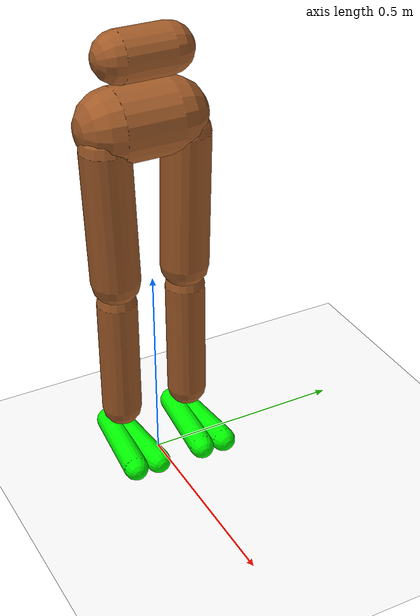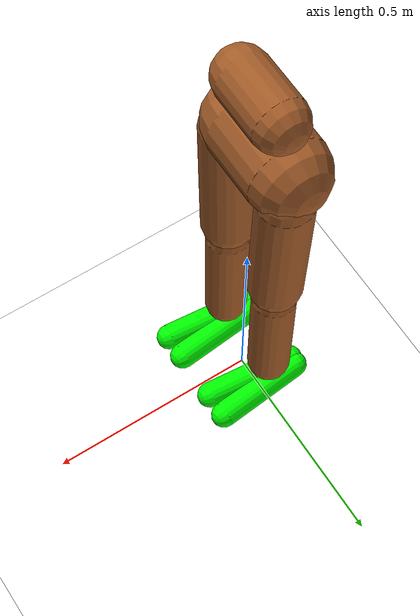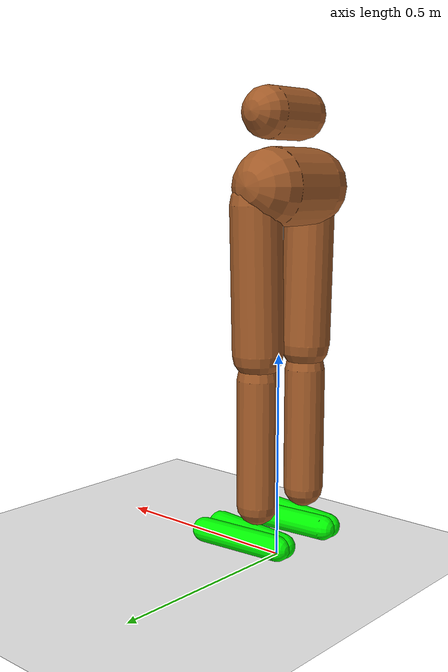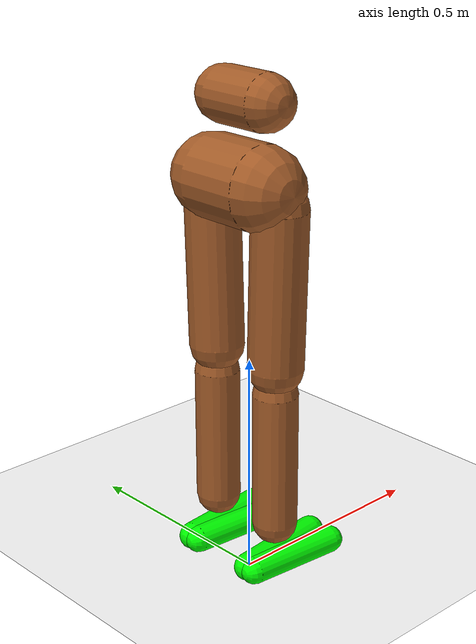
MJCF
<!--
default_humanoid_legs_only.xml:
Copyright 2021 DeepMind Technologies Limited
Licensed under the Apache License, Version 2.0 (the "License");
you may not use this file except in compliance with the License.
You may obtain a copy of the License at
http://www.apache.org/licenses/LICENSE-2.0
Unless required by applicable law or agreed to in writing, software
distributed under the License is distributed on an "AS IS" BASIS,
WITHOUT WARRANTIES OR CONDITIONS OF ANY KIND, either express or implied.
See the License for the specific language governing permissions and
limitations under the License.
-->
<mujoco model="humanoid feetonly flat terrain scene">
  <include file="locomotion/default_humanoid/xmls/default_humanoid_legs_only.xml"/>

  <statistic center="0 0 0.1" extent="0.8" meansize="0.04"/>

  <visual>
    <headlight diffuse=".8 .8 .8" ambient=".2 .2 .2" specular="1 1 1"/>
    <rgba force="1 0 0 1"/>
    <global azimuth="120" elevation="-20"/>
    <map force="0.01"/>
    <scale forcewidth="0.3" contactwidth="0.5" contactheight="0.2"/>
    <quality shadowsize="8192"/>
  </visual>

  <asset>
    <texture type="skybox" builtin="gradient" rgb1="1 1 1" rgb2="1 1 1" width="800" height="800"/>
    <texture type="2d" name="groundplane" builtin="checker" mark="edge" rgb1="1 1 1" rgb2="1 1 1" markrgb="0 0 0"
      width="300" height="300"/>
    <material name="groundplane" texture="groundplane" texuniform="true" texrepeat="5 5" reflectance="0"/>
  </asset>

  <worldbody>
    <geom name="floor" size="0 0 0.01" type="plane" material="groundplane" contype="1" conaffinity="0" priority="1"
      friction="0.6" condim="3"/>
  </worldbody>

  <keyframe>
     <key name="home" qpos='0 0 1.06 1 0 0 0 0 0 0 0 0 0 0 0 0 0 0 0'/>
  </keyframe>
</mujoco>

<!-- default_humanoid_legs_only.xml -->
<mujoco model="Humanoid">
  <compiler angle="radian"/>

  <option iterations="3" ls_iterations="5" timestep="0.002" integrator="Euler">
    <flag eulerdamp="disable"/>
  </option>

  <asset>
    <texture type="skybox" builtin="gradient" rgb1=".3 .5 .7" rgb2="0 0 0" width="32" height="512"/>
    <texture name="body" type="cube" builtin="flat" mark="cross" width="128" height="128" rgb1="0.8 0.6 0.4" rgb2="0.8 0.6 0.4" markrgb="1 1 1"/>
    <material name="body" texture="body" texuniform="true" rgba="0.8 0.6 .4 1"/>
    <texture name="grid" type="2d" builtin="checker" width="512" height="512" rgb1=".1 .2 .3" rgb2=".2 .3 .4"/>
    <material name="grid" texture="grid" texrepeat="1 1" texuniform="true" reflectance=".2"/>
  </asset>

  <default>
    <motor ctrlrange="-1 1" ctrllimited="true"/>
    <default class="humanoid">

      <!-- geoms -->
      <geom type="capsule" condim="1" friction=".7" solimp=".9 .99 .003" solref=".015 1" material="body" group="1"/>
      <default class="thigh">
        <geom size=".06"/>
      </default>
      <default class="shin">
        <geom fromto="0 0 0 0 0 -.3"  size=".049"/>
      </default>
      <default class="foot">
        <geom size=".027"/>
        <default class="foot1">
          <geom fromto="-.07 -.01 0 .14 -.03 0"/>
          <site type="capsule" fromto="-.07 -.01 0 .14 -.03 0" size="0.03" rgba="0 1 0 1"/>
        </default>
        <default class="foot2">
          <geom fromto="-.07 .01 0 .14  .03 0"/>
          <site type="capsule" fromto="-.07 .01 0 .14 .03 0" size="0.03" rgba="0 1 0 1"/>
        </default>

      </default>

      <!-- joints -->
        <default class="hfe">
        <joint actuatorfrcrange="-30 30" range="-1.74533 0.523599" armature="0.007614" frictionloss="0.3"/>
      </default>
      <default class="hxx">
        <joint actuatorfrcrange="-20 20" range="-0.610865 0.610865" armature="0.0056" frictionloss="0.3"/>
      </default>
      <default class="kfe">
        <joint actuatorfrcrange="-30 30" range="0 2.0944" armature="0.0056" frictionloss="0.8"/>
      </default>
      <default class="ffe">
        <joint actuatorfrcrange="-20 20" range="-0.523599 0.698132" armature="0.0056" frictionloss="1.0"/>
      </default>
      <default class="faa">
        <joint actuatorfrcrange="-5 5" range="-0.523599 0.523599" armature="0.0004941" damping="0.1" frictionloss="0.1"/>
        <position kp="1"/>
      </default>

    </default>
  </default>

  <worldbody>
    <light name="spotlight" mode="targetbodycom" target="torso" pos="3 0 4"/>
    <body name = "torso" pos="0 0 1.06" childclass="humanoid">
      <freejoint/>
      <site name="imu"/>
      <camera name="front" pos="1.210 -0.435 0.32" xyaxes="0.342 0.940 0.000 -0.321 0.117 0.940" mode="trackcom"/>
      <camera name="track" pos="0.805 -1.105 0.2" xyaxes="0.814 0.580 0.000 -0.140 0.196 0.971" mode="trackcom"/>
      <inertial pos="0.0123294 -0.0023557 0.114047" quat="0.997324 0.0100377 0.00560983 -0.0721951" mass="0.37812"
        diaginertia="0.0900564 0.0815619 0.0530251"/>
      <body name="waist_lower" pos="-.01 0 -0">
      <geom name="waist_lower" fromto="0 -.06 0 0 .06 0" size=".06"/>
      <body name="pelvis" pos="0 0 -.165">
        <geom name="butt" fromto="-.02 -.07 0 -.02 .07 0" size=".09"/>
          <body name="thigh_left" pos="0 .1 -.04">
            <joint name="LL_HR" class="hxx" axis="1 0 -1" pos="-0.06 0 .061" />
            <joint name="LL_HAA" class="hxx" axis="-1 0 1"/>
            <joint name="LL_HFE" class="hfe" axis="0 2 0"/>
            <geom name="thigh_left" fromto="0 0 0 0 -.01 -.34" class="thigh"/>
            <body name="shin_left" pos="0 -.01 -.4">
                <joint name="LL_KFE" class="kfe" axis="0 1 0" pos="0 -0.025 0"/>
                <geom name="shin_left" fromto="0 0 0 0 0 -.3" class="shin"/>
                <body name="foot_left" pos="0 0 -.39">
                <joint name="LL_FFE" class="ffe" axis="0 1 0" pos="0 0.025 0"/>
                <joint name="LL_FAA" class="faa"/>
                <geom name="foot1_left" class="foot1"/>

                <geom name="foot2_left" class="foot2"/>
                <site name="1_foot_l" class="foot1" quat="0.45452 -0.541675 -0.541675 -0.45452"/>
                <site name="2_foot_l" class="foot2" quat="0.45452 -0.541675 -0.541675 -0.45452"/>
                </body>
              </body>
            </body>
          <body name="lr_hr">
            <body name="thigh_right" pos="0 -.1 -.04">
            <joint name="LR_HR" class="hxx" axis="1 0 -1" pos="-0.06 0 .061" />
            <joint name="LR_HAA" class="hxx" axis="-1 0 1"/>
            <joint name="LR_HFE" class="hfe" axis="0 2 0"/>
            <geom name="thigh_right" fromto="0 0 0 0 .01 -.34" class="thigh"/>
            <body name="shin_right" pos="0 .01 -.4">
              <joint name="LR_KFE" class="kfe" axis="0 1 0" pos="0 0.025 0"/>
              <geom name="shin_right" class="shin"/>
              <body name="foot_right" pos="0 0 -.39">
                <joint name="LR_FFE" class="ffe" axis="0 1 0" pos="0 0.025 0"/>
                <joint name="LR_FAA" class="faa"/>
                <geom name="foot1_right" class="foot1"/>
                <geom name="foot2_right" class="foot2"/>
                <site name="1_foot_r" class="foot1" quat="0.45452 -0.541675 -0.541675 -0.45452"/>
                <site name="2_foot_r" class="foot2" quat="0.45452 -0.541675 -0.541675 -0.45452"/>
              </body>
            </body>
          </body>
        </body>
        </body>
     </body>
    </body>
  </worldbody>

   <contact>
    <exclude body1="waist_lower" body2="thigh_right"/>
    <exclude body1="waist_lower" body2="thigh_left"/>
  </contact>

   <actuator>
    <position class="hxx" name="LL_HR" joint="LL_HR"/>
    <position class="hxx" name="LL_HAA" joint="LL_HAA"/>
    <position class="hfe" name="LL_HFE" joint="LL_HFE"/>
    <position class="kfe" name="LL_KFE" joint="LL_KFE"/>
    <position class="ffe" name="LL_FFE" joint="LL_FFE"/>
    <position class="faa" name="LL_FAA" joint="LL_FAA"/>
    <position class="hxx" name="LR_HR" joint="LR_HR"/>
    <position class="hxx" name="LR_HAA" joint="LR_HAA"/>
    <position class="hfe" name="LR_HFE" joint="LR_HFE"/>
    <position class="kfe" name="LR_KFE" joint="LR_KFE"/>
    <position class="ffe" name="LR_FFE" joint="LR_FFE"/>
    <position class="faa" name="LR_FAA" joint="LR_FAA"/>
  </actuator>

  <sensor>
    <gyro site="imu" name="gyro"/>
    <velocimeter site="imu" name="local_linvel"/>
    <accelerometer site="imu" name="accelerometer"/>
    <framezaxis objtype="site" objname="imu" name="upvector"/> <!-- #Gravity vector -->
    <framexaxis objtype="site" objname="imu" name="forwardvector"/>
    <framelinvel objtype="site" objname="imu" name="global_linvel"/>
    <frameangvel objtype="site" objname="imu" name="global_angvel"/>
    <framepos objtype="site" objname="imu" name="position"/>
    <framequat objtype="site" objname="imu" name="orientation"/>
    <framelinvel objtype="site" objname="1_foot_l" name="1_foot_l_global_linvel"/>
    <framelinvel objtype="site" objname="1_foot_r" name="1_foot_r_global_linvel"/>
    <framelinvel objtype="site" objname="2_foot_l" name="2_foot_l_global_linvel"/>
    <framelinvel objtype="site" objname="2_foot_r" name="2_foot_r_global_linvel"/>
    <framexaxis objtype="site" objname="1_foot_l" name="1_foot_l_upvector"/>
    <framexaxis objtype="site" objname="1_foot_r" name="1_foot_r_upvector"/>
    <framexaxis objtype="site" objname="2_foot_l" name="2_foot_l_upvector"/>
    <framexaxis objtype="site" objname="2_foot_r" name="2_foot_r_upvector"/>
    <framepos objtype="site" objname="1_foot_l" name="1_foot_l_pos"/>
    <framepos objtype="site" objname="1_foot_r" name="1_foot_r_pos"/>
    <framepos objtype="site" objname="2_foot_l" name="2_foot_l_pos"/>
    <framepos objtype="site" objname="2_foot_r" name="2_foot_r_pos"/>
  </sensor>

</mujoco>
